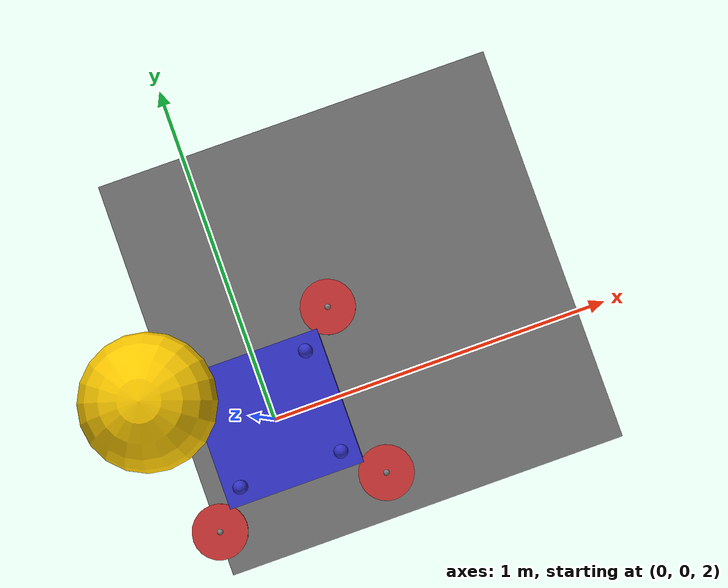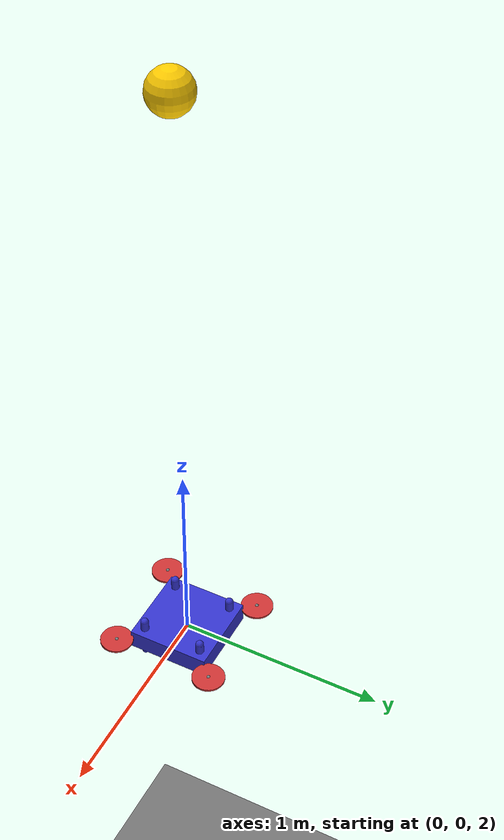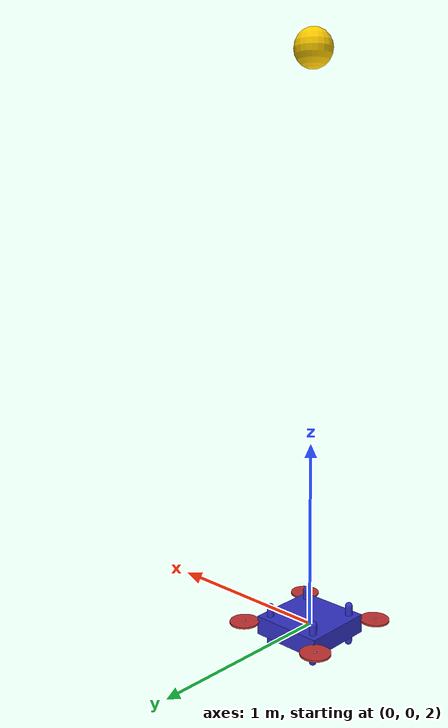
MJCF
<mujoco model="drone_with_camera">
  <compiler angle="radian" coordinate="local" inertiafromgeom="true"/>

  <option timestep="0.005" iterations="50" solver="PGS" gravity="0 0 -9.81"/>

  <asset>
    <texture name="grid" type="2d" builtin="checker" rgb1="0.1 0.1 0.1" rgb2="0.8 0.8 0.8" width="512" height="512"/>
    <material name="grid" texture="grid" texrepeat="8 8" reflectance="0.2"/>
    <texture name="sky" type="skybox" builtin="gradient" rgb1="0.3 0.5 0.7" rgb2="0.0 0.0 0.0" width="512" height="512"/>
    <material name="drone_mat" rgba="0.2 0.2 0.8 1"/>
    <material name="rotor_mat" rgba="0.8 0.2 0.2 1"/>
    <material name="ball_mat" rgba="1.0 0.8 0.0 1"/>
    <material name="catcher_mat" rgba="0.0 1.0 0.0 0.5"/>
  </asset>

  <worldbody>
    <!-- Ground plane -->
    <geom name="floor" pos="0 0 -0.1" size="10 10 0.1" type="box" material="grid"/>

    <!-- Lighting -->
    <light directional="true" ambient="0.2 0.2 0.2" diffuse="0.8 0.8 0.8" specular="0.3 0.3 0.3" castshadow="false" pos="0 0 20" dir="0 0 -1"/>

    <!-- Drone body -->
    <body name="drone" pos="0 0 2">
      <freejoint/>

      <!-- Central body -->
      <geom name="drone_body" type="box" size="0.2 0.2 0.05" material="drone_mat" mass="1.0"/>

      <!-- Arms -->
      <geom name="arm1" type="capsule" pos="0.15 0.15 0" size="0.02 0.1" material="drone_mat" mass="0.1"/>
      <geom name="arm2" type="capsule" pos="-0.15 0.15 0" size="0.02 0.1" material="drone_mat" mass="0.1"/>
      <geom name="arm3" type="capsule" pos="-0.15 -0.15 0" size="0.02 0.1" material="drone_mat" mass="0.1"/>
      <geom name="arm4" type="capsule" pos="0.15 -0.15 0" size="0.02 0.1" material="drone_mat" mass="0.1"/>

      <!-- Propellers -->
      <geom name="prop1" type="cylinder" pos="0.25 0.25 0.02" size="0.08 0.005" material="rotor_mat" mass="0.05"/>
      <geom name="prop2" type="cylinder" pos="-0.25 0.25 0.02" size="0.08 0.005" material="rotor_mat" mass="0.05"/>
      <geom name="prop3" type="cylinder" pos="-0.25 -0.25 0.02" size="0.08 0.005" material="rotor_mat" mass="0.05"/>
      <geom name="prop4" type="cylinder" pos="0.25 -0.25 0.02" size="0.08 0.005" material="rotor_mat" mass="0.05"/>

      <!-- Camera attachment point -->
      <body name="camera_mount" pos="0 0 -0.1">
        <geom name="camera_body" type="box" size="0.03 0.03 0.02" rgba="0.1 0.1 0.1 1" mass="0.1"/>
        <camera name="drone_camera" pos="0 0 0" xyaxes="1 0 0 0 1 0" fovy="60"/>
      </body>

      <!-- Additional cameras for different views -->
      <camera name="fpv_camera" pos="0.1 0 0" xyaxes="0 -1 0 0 0 -1" fovy="90"/>
      <camera name="top_camera" pos="0 0 0.2" xyaxes="1 0 0 0 1 0" fovy="45"/>
      <!-- Downward camera for ball detection -->
      <camera name="bottom_camera" pos="0 0 -0.15" xyaxes="1 0 0 0 -1 0" fovy="60"/>

      <!-- Sites for actuators and sensors -->
      <site name="prop1_site" pos="0.25 0.25 0.02" size="0.01"/>
      <site name="prop2_site" pos="-0.25 0.25 0.02" size="0.01"/>
      <site name="prop3_site" pos="-0.25 -0.25 0.02" size="0.01"/>
      <site name="prop4_site" pos="0.25 -0.25 0.02" size="0.01"/>
      <site name="imu_site" pos="0 0 0" size="0.01"/>
    </body>

    <!-- Falling ball -->
    <body name="ball" pos="0 0 5">
      <freejoint/>
      <geom name="ball_geom" type="sphere" size="0.1" material="ball_mat" mass="0.05" friction="0.5 0.005 0.0001"/>
      <site name="ball_site" pos="0 0 0" size="0.1"/>
    </body>

    <!-- Static camera for external view -->
    <camera name="external_camera" pos="3 3 3" xyaxes="-1 1 0 -1 -1 2" fovy="45"/>
  </worldbody>

  <actuator>
    <!-- Force actuators for thrust at propeller sites -->
    <motor name="thrust1" site="prop1_site" gear="0 0 1 0 0 0"/>
    <motor name="thrust2" site="prop2_site" gear="0 0 1 0 0 0"/>
    <motor name="thrust3" site="prop3_site" gear="0 0 1 0 0 0"/>
    <motor name="thrust4" site="prop4_site" gear="0 0 1 0 0 0"/>
  </actuator>

  <sensor>
    <!-- IMU sensors -->
    <accelerometer name="accel" site="imu_site"/>
    <gyro name="gyro" site="imu_site"/>

    <!-- Position and orientation -->
    <framepos name="drone_pos" objtype="body" objname="drone"/>
    <framequat name="drone_quat" objtype="body" objname="drone"/>

    <!-- Ball tracking sensors -->
    <framepos name="ball_pos" objtype="body" objname="ball"/>
    <framequat name="ball_quat" objtype="body" objname="ball"/>
  </sensor>
</mujoco>
